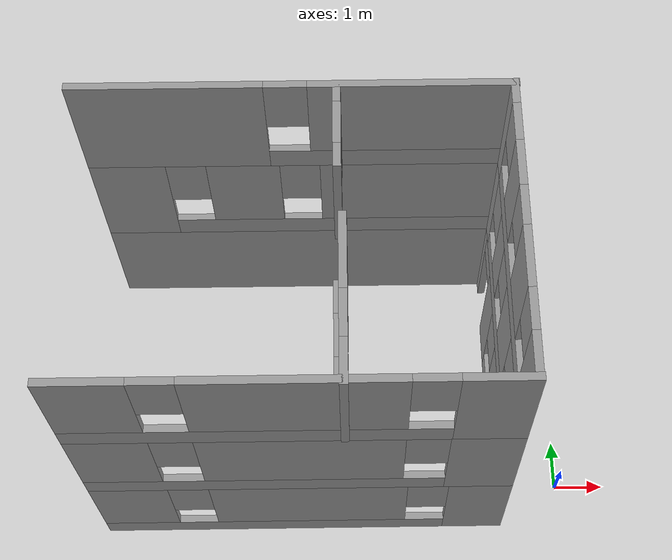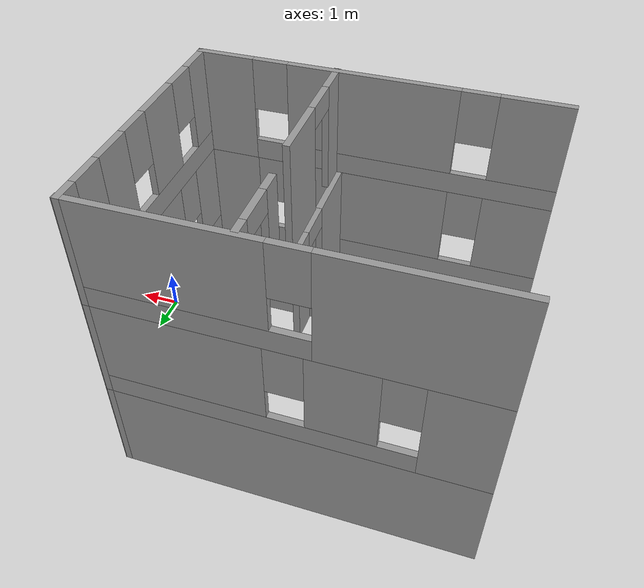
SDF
<sdf version="1.6">
 <model name="simple_building">
  <pose>-5.37242 2.16354 0 0 -0 0</pose>
  <link name="Wall_18">
   <pose>0.008172 2.93646 2.5 0 -0 0</pose>
   <visual name="Wall_18_Visual_0">
    <pose>-3.37982 0 1.25 0 -0 0</pose>
    <geometry><box><size>1.51412 0.15 2.5</size></box></geometry>
    <material>
     <script><uri>file://media/materials/scripts/gazebo.material</uri><name>Gazebo/Grey</name></script>
     <ambient>1 1 1 1</ambient>
    </material>
   </visual>
   <collision name="Wall_18_Collision_0">
    <geometry><box><size>1.51412 0.15 2.5</size></box></geometry>
    <pose>-3.37982 0 1.25 0 -0 0</pose>
   </collision>
   <visual name="Wall_18_Visual_1">
    <pose>0.757062 0 0.25 0 -0 0</pose>
    <geometry><box><size>6.75963 0.15 0.5</size></box></geometry>
    <material>
     <script><uri>file://media/materials/scripts/gazebo.material</uri><name>Gazebo/Grey</name></script>
     <ambient>1 1 1 1</ambient>
    </material>
   </visual>
   <collision name="Wall_18_Collision_1">
    <geometry><box><size>6.75963 0.15 0.5</size></box></geometry>
    <pose>0.757062 0 0.25 0 -0 0</pose>
   </collision>
   <visual name="Wall_18_Visual_2">
    <pose>-1.0897 0 1.5 0 -0 0</pose>
    <geometry><box><size>1.4661 0.15 2</size></box></geometry>
    <material>
     <script><uri>file://media/materials/scripts/gazebo.material</uri><name>Gazebo/Grey</name></script>
     <ambient>1 1 1 1</ambient>
    </material>
   </visual>
   <collision name="Wall_18_Collision_2">
    <geometry><box><size>1.4661 0.15 2</size></box></geometry>
    <pose>-1.0897 0 1.5 0 -0 0</pose>
   </collision>
   <visual name="Wall_18_Visual_3">
    <pose>2.29011 0 1.5 0 -0 0</pose>
    <geometry><box><size>3.69353 0.15 2</size></box></geometry>
    <material>
     <script><uri>file://media/materials/scripts/gazebo.material</uri><name>Gazebo/Grey</name></script>
     <ambient>1 1 1 1</ambient>
    </material>
   </visual>
   <collision name="Wall_18_Collision_3">
    <geometry><box><size>3.69353 0.15 2</size></box></geometry>
    <pose>2.29011 0 1.5 0 -0 0</pose>
   </collision>
   <visual name="Wall_18_Visual_4">
    <pose>-2.22275 0 1.9 0 -0 0</pose>
    <geometry><box><size>0.8 0.15 1.2</size></box></geometry>
    <material>
     <script><uri>file://media/materials/scripts/gazebo.material</uri><name>Gazebo/Grey</name></script>
     <ambient>1 1 1 1</ambient>
    </material>
   </visual>
   <collision name="Wall_18_Collision_4">
    <geometry><box><size>0.8 0.15 1.2</size></box></geometry>
    <pose>-2.22275 0 1.9 0 -0 0</pose>
   </collision>
   <visual name="Wall_18_Visual_5">
    <pose>0.043349 0 1.9 0 -0 0</pose>
    <geometry><box><size>0.8 0.15 1.2</size></box></geometry>
    <material>
     <script><uri>file://media/materials/scripts/gazebo.material</uri><name>Gazebo/Grey</name></script>
     <ambient>1 1 1 1</ambient>
    </material>
   </visual>
   <collision name="Wall_18_Collision_5">
    <geometry><box><size>0.8 0.15 1.2</size></box></geometry>
    <pose>0.043349 0 1.9 0 -0 0</pose>
   </collision>
  </link>
  <link name="Wall_19">
   <pose>4.05484 0.011464 2.5 0 0 -1.5708</pose>
   <visual name="Wall_19_Visual_0">
    <pose>-2.73149 0 1.25 0 -0 0</pose>
    <geometry><box><size>0.537024 0.15 2.5</size></box></geometry>
    <material>
     <script><uri>file://media/materials/scripts/gazebo.material</uri><name>Gazebo/Grey</name></script>
     <ambient>1 1 1 1</ambient>
    </material>
   </visual>
   <collision name="Wall_19_Collision_0">
    <geometry><box><size>0.537024 0.15 2.5</size></box></geometry>
    <pose>-2.73149 0 1.25 0 -0 0</pose>
   </collision>
   <visual name="Wall_19_Visual_1">
    <pose>0.268512 0 0.25 0 -0 0</pose>
    <geometry><box><size>5.46298 0.15 0.5</size></box></geometry>
    <material>
     <script><uri>file://media/materials/scripts/gazebo.material</uri><name>Gazebo/Grey</name></script>
     <ambient>1 1 1 1</ambient>
    </material>
   </visual>
   <collision name="Wall_19_Collision_1">
    <geometry><box><size>5.46298 0.15 0.5</size></box></geometry>
    <pose>0.268512 0 0.25 0 -0 0</pose>
   </collision>
   <visual name="Wall_19_Visual_2">
    <pose>-1.27212 0 1.5 0 -0 0</pose>
    <geometry><box><size>0.78171 0.15 2</size></box></geometry>
    <material>
     <script><uri>file://media/materials/scripts/gazebo.material</uri><name>Gazebo/Grey</name></script>
     <ambient>1 1 1 1</ambient>
    </material>
   </visual>
   <collision name="Wall_19_Collision_2">
    <geometry><box><size>0.78171 0.15 2</size></box></geometry>
    <pose>-1.27212 0 1.5 0 -0 0</pose>
   </collision>
   <visual name="Wall_19_Visual_3">
    <pose>0.469281 0 1.5 0 -0 0</pose>
    <geometry><box><size>1.10109 0.15 2</size></box></geometry>
    <material>
     <script><uri>file://media/materials/scripts/gazebo.material</uri><name>Gazebo/Grey</name></script>
     <ambient>1 1 1 1</ambient>
    </material>
   </visual>
   <collision name="Wall_19_Collision_3">
    <geometry><box><size>1.10109 0.15 2</size></box></geometry>
    <pose>0.469281 0 1.5 0 -0 0</pose>
   </collision>
   <visual name="Wall_19_Visual_4">
    <pose>2.40991 0 1.5 0 -0 0</pose>
    <geometry><box><size>1.18017 0.15 2</size></box></geometry>
    <material>
     <script><uri>file://media/materials/scripts/gazebo.material</uri><name>Gazebo/Grey</name></script>
     <ambient>1 1 1 1</ambient>
    </material>
   </visual>
   <collision name="Wall_19_Collision_4">
    <geometry><box><size>1.18017 0.15 2</size></box></geometry>
    <pose>2.40991 0 1.5 0 -0 0</pose>
   </collision>
   <visual name="Wall_19_Visual_5">
    <pose>-2.06298 0 1.9 0 -0 0</pose>
    <geometry><box><size>0.8 0.15 1.2</size></box></geometry>
    <material>
     <script><uri>file://media/materials/scripts/gazebo.material</uri><name>Gazebo/Grey</name></script>
     <ambient>1 1 1 1</ambient>
    </material>
   </visual>
   <collision name="Wall_19_Collision_5">
    <geometry><box><size>0.8 0.15 1.2</size></box></geometry>
    <pose>-2.06298 0 1.9 0 -0 0</pose>
   </collision>
   <visual name="Wall_19_Visual_6">
    <pose>-0.481266 0 1.9 0 -0 0</pose>
    <geometry><box><size>0.8 0.15 1.2</size></box></geometry>
    <material>
     <script><uri>file://media/materials/scripts/gazebo.material</uri><name>Gazebo/Grey</name></script>
     <ambient>1 1 1 1</ambient>
    </material>
   </visual>
   <collision name="Wall_19_Collision_6">
    <geometry><box><size>0.8 0.15 1.2</size></box></geometry>
    <pose>-0.481266 0 1.9 0 -0 0</pose>
   </collision>
   <visual name="Wall_19_Visual_7">
    <pose>1.41983 0 1.9 0 -0 0</pose>
    <geometry><box><size>0.8 0.15 1.2</size></box></geometry>
    <material>
     <script><uri>file://media/materials/scripts/gazebo.material</uri><name>Gazebo/Grey</name></script>
     <ambient>1 1 1 1</ambient>
    </material>
   </visual>
   <collision name="Wall_19_Collision_7">
    <geometry><box><size>0.8 0.15 1.2</size></box></geometry>
    <pose>1.41983 0 1.9 0 -0 0</pose>
   </collision>
  </link>
  <link name="Wall_2">
   <collision name="Wall_2_Collision">
    <geometry><box><size>8.27376 0.15 2.5</size></box></geometry>
    <pose>0 0 1.25 0 -0 0</pose>
   </collision>
   <visual name="Wall_2_Visual">
    <pose>0 0 1.25 0 -0 0</pose>
    <geometry><box><size>8.27376 0.15 2.5</size></box></geometry>
    <material>
     <script><uri>file://media/materials/scripts/gazebo.material</uri><name>Gazebo/Grey</name></script>
     <ambient>1 1 1 1</ambient>
    </material>
   </visual>
   <pose>0.008172 2.93646 0 0 -0 0</pose>
  </link>
  <link name="Wall_20">
   <pose>0.008172 -2.91354 2.5 0 -0 3.14159</pose>
   <visual name="Wall_20_Visual_0">
    <pose>-3.46119 0 1.25 0 -0 0</pose>
    <geometry><box><size>1.35138 0.15 2.5</size></box></geometry>
    <material>
     <script><uri>file://media/materials/scripts/gazebo.material</uri><name>Gazebo/Grey</name></script>
     <ambient>1 1 1 1</ambient>
    </material>
   </visual>
   <collision name="Wall_20_Collision_0">
    <geometry><box><size>1.35138 0.15 2.5</size></box></geometry>
    <pose>-3.46119 0 1.25 0 -0 0</pose>
   </collision>
   <visual name="Wall_20_Visual_1">
    <pose>0.675691 0 0.25 0 -0 0</pose>
    <geometry><box><size>6.92237 0.15 0.5</size></box></geometry>
    <material>
     <script><uri>file://media/materials/scripts/gazebo.material</uri><name>Gazebo/Grey</name></script>
     <ambient>1 1 1 1</ambient>
    </material>
   </visual>
   <collision name="Wall_20_Collision_1">
    <geometry><box><size>6.92237 0.15 0.5</size></box></geometry>
    <pose>0.675691 0 0.25 0 -0 0</pose>
   </collision>
   <visual name="Wall_20_Visual_2">
    <pose>-0.088975 0 1.5 0 -0 0</pose>
    <geometry><box><size>3.79304 0.15 2</size></box></geometry>
    <material>
     <script><uri>file://media/materials/scripts/gazebo.material</uri><name>Gazebo/Grey</name></script>
     <ambient>1 1 1 1</ambient>
    </material>
   </visual>
   <collision name="Wall_20_Collision_2">
    <geometry><box><size>3.79304 0.15 2</size></box></geometry>
    <pose>-0.088975 0 1.5 0 -0 0</pose>
   </collision>
   <visual name="Wall_20_Visual_3">
    <pose>3.37221 0 1.5 0 -0 0</pose>
    <geometry><box><size>1.52933 0.15 2</size></box></geometry>
    <material>
     <script><uri>file://media/materials/scripts/gazebo.material</uri><name>Gazebo/Grey</name></script>
     <ambient>1 1 1 1</ambient>
    </material>
   </visual>
   <collision name="Wall_20_Collision_3">
    <geometry><box><size>1.52933 0.15 2</size></box></geometry>
    <pose>3.37221 0 1.5 0 -0 0</pose>
   </collision>
   <visual name="Wall_20_Visual_4">
    <pose>-2.3855 0 1.9 0 -0 0</pose>
    <geometry><box><size>0.8 0.15 1.2</size></box></geometry>
    <material>
     <script><uri>file://media/materials/scripts/gazebo.material</uri><name>Gazebo/Grey</name></script>
     <ambient>1 1 1 1</ambient>
    </material>
   </visual>
   <collision name="Wall_20_Collision_4">
    <geometry><box><size>0.8 0.15 1.2</size></box></geometry>
    <pose>-2.3855 0 1.9 0 -0 0</pose>
   </collision>
   <visual name="Wall_20_Visual_5">
    <pose>2.20755 0 1.9 0 -0 0</pose>
    <geometry><box><size>0.8 0.15 1.2</size></box></geometry>
    <material>
     <script><uri>file://media/materials/scripts/gazebo.material</uri><name>Gazebo/Grey</name></script>
     <ambient>1 1 1 1</ambient>
    </material>
   </visual>
   <collision name="Wall_20_Collision_5">
    <geometry><box><size>0.8 0.15 1.2</size></box></geometry>
    <pose>2.20755 0 1.9 0 -0 0</pose>
   </collision>
  </link>
  <link name="Wall_23">
   <pose>0.008172 2.93646 5 0 -0 0</pose>
   <visual name="Wall_23_Visual_0">
    <pose>-2.33041 0 1.25 0 -0 0</pose>
    <geometry><box><size>3.61293 0.15 2.5</size></box></geometry>
    <material>
     <script><uri>file://media/materials/scripts/gazebo.material</uri><name>Gazebo/Grey</name></script>
     <ambient>1 1 1 1</ambient>
    </material>
   </visual>
   <collision name="Wall_23_Collision_0">
    <geometry><box><size>3.61293 0.15 2.5</size></box></geometry>
    <pose>-2.33041 0 1.25 0 -0 0</pose>
   </collision>
   <visual name="Wall_23_Visual_1">
    <pose>1.80647 0 0.25 0 -0 0</pose>
    <geometry><box><size>4.66083 0.15 0.5</size></box></geometry>
    <material>
     <script><uri>file://media/materials/scripts/gazebo.material</uri><name>Gazebo/Grey</name></script>
     <ambient>1 1 1 1</ambient>
    </material>
   </visual>
   <collision name="Wall_23_Collision_1">
    <geometry><box><size>4.66083 0.15 0.5</size></box></geometry>
    <pose>1.80647 0 0.25 0 -0 0</pose>
   </collision>
   <visual name="Wall_23_Visual_2">
    <pose>2.20647 0 1.5 0 -0 0</pose>
    <geometry><box><size>3.86083 0.15 2</size></box></geometry>
    <material>
     <script><uri>file://media/materials/scripts/gazebo.material</uri><name>Gazebo/Grey</name></script>
     <ambient>1 1 1 1</ambient>
    </material>
   </visual>
   <collision name="Wall_23_Collision_2">
    <geometry><box><size>3.86083 0.15 2</size></box></geometry>
    <pose>2.20647 0 1.5 0 -0 0</pose>
   </collision>
   <visual name="Wall_23_Visual_3">
    <pose>-0.123947 0 1.9 0 -0 0</pose>
    <geometry><box><size>0.8 0.15 1.2</size></box></geometry>
    <material>
     <script><uri>file://media/materials/scripts/gazebo.material</uri><name>Gazebo/Grey</name></script>
     <ambient>1 1 1 1</ambient>
    </material>
   </visual>
   <collision name="Wall_23_Collision_3">
    <geometry><box><size>0.8 0.15 1.2</size></box></geometry>
    <pose>-0.123947 0 1.9 0 -0 0</pose>
   </collision>
  </link>
  <link name="Wall_24">
   <pose>4.05484 0.011464 5 0 0 -1.5708</pose>
   <visual name="Wall_24_Visual_0">
    <pose>-2.73149 0 1.25 0 -0 0</pose>
    <geometry><box><size>0.537024 0.15 2.5</size></box></geometry>
    <material>
     <script><uri>file://media/materials/scripts/gazebo.material</uri><name>Gazebo/Grey</name></script>
     <ambient>1 1 1 1</ambient>
    </material>
   </visual>
   <collision name="Wall_24_Collision_0">
    <geometry><box><size>0.537024 0.15 2.5</size></box></geometry>
    <pose>-2.73149 0 1.25 0 -0 0</pose>
   </collision>
   <visual name="Wall_24_Visual_1">
    <pose>0.268512 0 0.25 0 -0 0</pose>
    <geometry><box><size>5.46298 0.15 0.5</size></box></geometry>
    <material>
     <script><uri>file://media/materials/scripts/gazebo.material</uri><name>Gazebo/Grey</name></script>
     <ambient>1 1 1 1</ambient>
    </material>
   </visual>
   <collision name="Wall_24_Collision_1">
    <geometry><box><size>5.46298 0.15 0.5</size></box></geometry>
    <pose>0.268512 0 0.25 0 -0 0</pose>
   </collision>
   <visual name="Wall_24_Visual_2">
    <pose>-1.18847 0 1.5 0 -0 0</pose>
    <geometry><box><size>0.949006 0.15 2</size></box></geometry>
    <material>
     <script><uri>file://media/materials/scripts/gazebo.material</uri><name>Gazebo/Grey</name></script>
     <ambient>1 1 1 1</ambient>
    </material>
   </visual>
   <collision name="Wall_24_Collision_2">
    <geometry><box><size>0.949006 0.15 2</size></box></geometry>
    <pose>-1.18847 0 1.5 0 -0 0</pose>
   </collision>
   <visual name="Wall_24_Visual_3">
    <pose>0.689808 0 1.5 0 -0 0</pose>
    <geometry><box><size>1.20755 0.15 2</size></box></geometry>
    <material>
     <script><uri>file://media/materials/scripts/gazebo.material</uri><name>Gazebo/Grey</name></script>
     <ambient>1 1 1 1</ambient>
    </material>
   </visual>
   <collision name="Wall_24_Collision_3">
    <geometry><box><size>1.20755 0.15 2</size></box></geometry>
    <pose>0.689808 0 1.5 0 -0 0</pose>
   </collision>
   <visual name="Wall_24_Visual_4">
    <pose>2.54679 0 1.5 0 -0 0</pose>
    <geometry><box><size>0.906414 0.15 2</size></box></geometry>
    <material>
     <script><uri>file://media/materials/scripts/gazebo.material</uri><name>Gazebo/Grey</name></script>
     <ambient>1 1 1 1</ambient>
    </material>
   </visual>
   <collision name="Wall_24_Collision_4">
    <geometry><box><size>0.906414 0.15 2</size></box></geometry>
    <pose>2.54679 0 1.5 0 -0 0</pose>
   </collision>
   <visual name="Wall_24_Visual_5">
    <pose>-2.06298 0 1.9 0 -0 0</pose>
    <geometry><box><size>0.8 0.15 1.2</size></box></geometry>
    <material>
     <script><uri>file://media/materials/scripts/gazebo.material</uri><name>Gazebo/Grey</name></script>
     <ambient>1 1 1 1</ambient>
    </material>
   </visual>
   <collision name="Wall_24_Collision_5">
    <geometry><box><size>0.8 0.15 1.2</size></box></geometry>
    <pose>-2.06298 0 1.9 0 -0 0</pose>
   </collision>
   <visual name="Wall_24_Visual_6">
    <pose>-0.313969 0 1.9 0 -0 0</pose>
    <geometry><box><size>0.8 0.15 1.2</size></box></geometry>
    <material>
     <script><uri>file://media/materials/scripts/gazebo.material</uri><name>Gazebo/Grey</name></script>
     <ambient>1 1 1 1</ambient>
    </material>
   </visual>
   <collision name="Wall_24_Collision_6">
    <geometry><box><size>0.8 0.15 1.2</size></box></geometry>
    <pose>-0.313969 0 1.9 0 -0 0</pose>
   </collision>
   <visual name="Wall_24_Visual_7">
    <pose>1.69359 0 1.9 0 -0 0</pose>
    <geometry><box><size>0.8 0.15 1.2</size></box></geometry>
    <material>
     <script><uri>file://media/materials/scripts/gazebo.material</uri><name>Gazebo/Grey</name></script>
     <ambient>1 1 1 1</ambient>
    </material>
   </visual>
   <collision name="Wall_24_Collision_7">
    <geometry><box><size>0.8 0.15 1.2</size></box></geometry>
    <pose>1.69359 0 1.9 0 -0 0</pose>
   </collision>
  </link>
  <link name="Wall_25">
   <pose>0.008172 -2.91354 5 0 -0 3.14159</pose>
   <visual name="Wall_25_Visual_0">
    <pose>-3.46879 0 1.25 0 -0 0</pose>
    <geometry><box><size>1.33617 0.15 2.5</size></box></geometry>
    <material>
     <script><uri>file://media/materials/scripts/gazebo.material</uri><name>Gazebo/Grey</name></script>
     <ambient>1 1 1 1</ambient>
    </material>
   </visual>
   <collision name="Wall_25_Collision_0">
    <geometry><box><size>1.33617 0.15 2.5</size></box></geometry>
    <pose>-3.46879 0 1.25 0 -0 0</pose>
   </collision>
   <visual name="Wall_25_Visual_1">
    <pose>0.668087 0 0.25 0 -0 0</pose>
    <geometry><box><size>6.93758 0.15 0.5</size></box></geometry>
    <material>
     <script><uri>file://media/materials/scripts/gazebo.material</uri><name>Gazebo/Grey</name></script>
     <ambient>1 1 1 1</ambient>
    </material>
   </visual>
   <collision name="Wall_25_Collision_1">
    <geometry><box><size>6.93758 0.15 0.5</size></box></geometry>
    <pose>0.668087 0 0.25 0 -0 0</pose>
   </collision>
   <visual name="Wall_25_Visual_2">
    <pose>-0.096579 0 1.5 0 -0 0</pose>
    <geometry><box><size>3.80825 0.15 2</size></box></geometry>
    <material>
     <script><uri>file://media/materials/scripts/gazebo.material</uri><name>Gazebo/Grey</name></script>
     <ambient>1 1 1 1</ambient>
    </material>
   </visual>
   <collision name="Wall_25_Collision_2">
    <geometry><box><size>3.80825 0.15 2</size></box></geometry>
    <pose>-0.096579 0 1.5 0 -0 0</pose>
   </collision>
   <visual name="Wall_25_Visual_3">
    <pose>3.37221 0 1.5 0 -0 0</pose>
    <geometry><box><size>1.52933 0.15 2</size></box></geometry>
    <material>
     <script><uri>file://media/materials/scripts/gazebo.material</uri><name>Gazebo/Grey</name></script>
     <ambient>1 1 1 1</ambient>
    </material>
   </visual>
   <collision name="Wall_25_Collision_3">
    <geometry><box><size>1.52933 0.15 2</size></box></geometry>
    <pose>3.37221 0 1.5 0 -0 0</pose>
   </collision>
   <visual name="Wall_25_Visual_4">
    <pose>-2.4007 0 1.9 0 -0 0</pose>
    <geometry><box><size>0.8 0.15 1.2</size></box></geometry>
    <material>
     <script><uri>file://media/materials/scripts/gazebo.material</uri><name>Gazebo/Grey</name></script>
     <ambient>1 1 1 1</ambient>
    </material>
   </visual>
   <collision name="Wall_25_Collision_4">
    <geometry><box><size>0.8 0.15 1.2</size></box></geometry>
    <pose>-2.4007 0 1.9 0 -0 0</pose>
   </collision>
   <visual name="Wall_25_Visual_5">
    <pose>2.20755 0 1.9 0 -0 0</pose>
    <geometry><box><size>0.8 0.15 1.2</size></box></geometry>
    <material>
     <script><uri>file://media/materials/scripts/gazebo.material</uri><name>Gazebo/Grey</name></script>
     <ambient>1 1 1 1</ambient>
    </material>
   </visual>
   <collision name="Wall_25_Collision_5">
    <geometry><box><size>0.8 0.15 1.2</size></box></geometry>
    <pose>2.20755 0 1.9 0 -0 0</pose>
   </collision>
  </link>
  <link name="Wall_27">
   <pose>0.819284 2.03127 5 0 -0 1.5708</pose>
   <visual name="Wall_27_Visual_0">
    <pose>-0.630644 0 1.25 0 -0 0</pose>
    <geometry><box><size>0.488713 0.15 2.5</size></box></geometry>
    <material>
     <script><uri>file://media/materials/scripts/gazebo.material</uri><name>Gazebo/Grey</name></script>
     <ambient>1 1 1 1</ambient>
    </material>
   </visual>
   <collision name="Wall_27_Collision_0">
    <geometry><box><size>0.488713 0.15 2.5</size></box></geometry>
    <pose>-0.630644 0 1.25 0 -0 0</pose>
   </collision>
   <visual name="Wall_27_Visual_1">
    <pose>0.694356 0 1.25 0 -0 0</pose>
    <geometry><box><size>0.361287 0.15 2.5</size></box></geometry>
    <material>
     <script><uri>file://media/materials/scripts/gazebo.material</uri><name>Gazebo/Grey</name></script>
     <ambient>1 1 1 1</ambient>
    </material>
   </visual>
   <collision name="Wall_27_Collision_1">
    <geometry><box><size>0.361287 0.15 2.5</size></box></geometry>
    <pose>0.694356 0 1.25 0 -0 0</pose>
   </collision>
   <visual name="Wall_27_Visual_2">
    <pose>0.063713 0 2.25 0 -0 0</pose>
    <geometry><box><size>0.9 0.15 0.5</size></box></geometry>
    <material>
     <script><uri>file://media/materials/scripts/gazebo.material</uri><name>Gazebo/Grey</name></script>
     <ambient>1 1 1 1</ambient>
    </material>
   </visual>
   <collision name="Wall_27_Collision_2">
    <geometry><box><size>0.9 0.15 0.5</size></box></geometry>
    <pose>0.063713 0 2.25 0 -0 0</pose>
   </collision>
  </link>
  <link name="Wall_3">
   <pose>4.05484 0.011464 0 0 0 -1.5708</pose>
   <visual name="Wall_3_Visual_0">
    <pose>-2.80638 0 1.25 0 -0 0</pose>
    <geometry><box><size>0.387247 0.15 2.5</size></box></geometry>
    <material>
     <script><uri>file://media/materials/scripts/gazebo.material</uri><name>Gazebo/Grey</name></script>
     <ambient>1 1 1 1</ambient>
    </material>
   </visual>
   <collision name="Wall_3_Collision_0">
    <geometry><box><size>0.387247 0.15 2.5</size></box></geometry>
    <pose>-2.80638 0 1.25 0 -0 0</pose>
   </collision>
   <visual name="Wall_3_Visual_1">
    <pose>-1.25899 0 1.25 0 -0 0</pose>
    <geometry><box><size>0.907531 0.15 2.5</size></box></geometry>
    <material>
     <script><uri>file://media/materials/scripts/gazebo.material</uri><name>Gazebo/Grey</name></script>
     <ambient>1 1 1 1</ambient>
    </material>
   </visual>
   <collision name="Wall_3_Collision_1">
    <geometry><box><size>0.907531 0.15 2.5</size></box></geometry>
    <pose>-1.25899 0 1.25 0 -0 0</pose>
   </collision>
   <visual name="Wall_3_Visual_2">
    <pose>1.09739 0 0.25 0 -0 0</pose>
    <geometry><box><size>3.80522 0.15 0.5</size></box></geometry>
    <material>
     <script><uri>file://media/materials/scripts/gazebo.material</uri><name>Gazebo/Grey</name></script>
     <ambient>1 1 1 1</ambient>
    </material>
   </visual>
   <collision name="Wall_3_Collision_2">
    <geometry><box><size>3.80522 0.15 0.5</size></box></geometry>
    <pose>1.09739 0 0.25 0 -0 0</pose>
   </collision>
   <visual name="Wall_3_Visual_3">
    <pose>0.446468 0 1.5 0 -0 0</pose>
    <geometry><box><size>0.90338 0.15 2</size></box></geometry>
    <material>
     <script><uri>file://media/materials/scripts/gazebo.material</uri><name>Gazebo/Grey</name></script>
     <ambient>1 1 1 1</ambient>
    </material>
   </visual>
   <collision name="Wall_3_Collision_3">
    <geometry><box><size>0.90338 0.15 2</size></box></geometry>
    <pose>0.446468 0 1.5 0 -0 0</pose>
   </collision>
   <visual name="Wall_3_Visual_4">
    <pose>2.34908 0 1.5 0 -0 0</pose>
    <geometry><box><size>1.30184 0.15 2</size></box></geometry>
    <material>
     <script><uri>file://media/materials/scripts/gazebo.material</uri><name>Gazebo/Grey</name></script>
     <ambient>1 1 1 1</ambient>
    </material>
   </visual>
   <collision name="Wall_3_Collision_4">
    <geometry><box><size>1.30184 0.15 2</size></box></geometry>
    <pose>2.34908 0 1.5 0 -0 0</pose>
   </collision>
   <visual name="Wall_3_Visual_5">
    <pose>-0.405222 0 1.9 0 -0 0</pose>
    <geometry><box><size>0.8 0.15 1.2</size></box></geometry>
    <material>
     <script><uri>file://media/materials/scripts/gazebo.material</uri><name>Gazebo/Grey</name></script>
     <ambient>1 1 1 1</ambient>
    </material>
   </visual>
   <collision name="Wall_3_Collision_5">
    <geometry><box><size>0.8 0.15 1.2</size></box></geometry>
    <pose>-0.405222 0 1.9 0 -0 0</pose>
   </collision>
   <visual name="Wall_3_Visual_6">
    <pose>1.29816 0 1.9 0 -0 0</pose>
    <geometry><box><size>0.8 0.15 1.2</size></box></geometry>
    <material>
     <script><uri>file://media/materials/scripts/gazebo.material</uri><name>Gazebo/Grey</name></script>
     <ambient>1 1 1 1</ambient>
    </material>
   </visual>
   <collision name="Wall_3_Collision_6">
    <geometry><box><size>0.8 0.15 1.2</size></box></geometry>
    <pose>1.29816 0 1.9 0 -0 0</pose>
   </collision>
   <visual name="Wall_3_Visual_7">
    <pose>-2.16275 0 2.25 0 -0 0</pose>
    <geometry><box><size>0.9 0.15 0.5</size></box></geometry>
    <material>
     <script><uri>file://media/materials/scripts/gazebo.material</uri><name>Gazebo/Grey</name></script>
     <ambient>1 1 1 1</ambient>
    </material>
   </visual>
   <collision name="Wall_3_Collision_7">
    <geometry><box><size>0.9 0.15 0.5</size></box></geometry>
    <pose>-2.16275 0 2.25 0 -0 0</pose>
   </collision>
  </link>
  <link name="Wall_32">
   <pose>0.906209 -1.38646 5 0 -0 1.5708</pose>
   <visual name="Wall_32_Visual_0">
    <pose>-1.20054 0 1.25 0 -0 0</pose>
    <geometry><box><size>0.848925 0.15 2.5</size></box></geometry>
    <material>
     <script><uri>file://media/materials/scripts/gazebo.material</uri><name>Gazebo/Grey</name></script>
     <ambient>1 1 1 1</ambient>
    </material>
   </visual>
   <collision name="Wall_32_Collision_0">
    <geometry><box><size>0.848925 0.15 2.5</size></box></geometry>
    <pose>-1.20054 0 1.25 0 -0 0</pose>
   </collision>
   <visual name="Wall_32_Visual_1">
    <pose>0.874463 0 1.25 0 -0 0</pose>
    <geometry><box><size>1.50107 0.15 2.5</size></box></geometry>
    <material>
     <script><uri>file://media/materials/scripts/gazebo.material</uri><name>Gazebo/Grey</name></script>
     <ambient>1 1 1 1</ambient>
    </material>
   </visual>
   <collision name="Wall_32_Collision_1">
    <geometry><box><size>1.50107 0.15 2.5</size></box></geometry>
    <pose>0.874463 0 1.25 0 -0 0</pose>
   </collision>
   <visual name="Wall_32_Visual_2">
    <pose>-0.326075 0 2.25 0 -0 0</pose>
    <geometry><box><size>0.9 0.15 0.5</size></box></geometry>
    <material>
     <script><uri>file://media/materials/scripts/gazebo.material</uri><name>Gazebo/Grey</name></script>
     <ambient>1 1 1 1</ambient>
    </material>
   </visual>
   <collision name="Wall_32_Collision_2">
    <geometry><box><size>0.9 0.15 0.5</size></box></geometry>
    <pose>-0.326075 0 2.25 0 -0 0</pose>
   </collision>
  </link>
  <link name="Wall_36">
   <pose>0.779949 -1.36145 2.5 0 0 -1.5708</pose>
   <visual name="Wall_36_Visual_0">
    <pose>-1.27259 0 1.25 0 -0 0</pose>
    <geometry><box><size>0.704821 0.15 2.5</size></box></geometry>
    <material>
     <script><uri>file://media/materials/scripts/gazebo.material</uri><name>Gazebo/Grey</name></script>
     <ambient>1 1 1 1</ambient>
    </material>
   </visual>
   <collision name="Wall_36_Collision_0">
    <geometry><box><size>0.704821 0.15 2.5</size></box></geometry>
    <pose>-1.27259 0 1.25 0 -0 0</pose>
   </collision>
   <visual name="Wall_36_Visual_1">
    <pose>0.802411 0 1.25 0 -0 0</pose>
    <geometry><box><size>1.64518 0.15 2.5</size></box></geometry>
    <material>
     <script><uri>file://media/materials/scripts/gazebo.material</uri><name>Gazebo/Grey</name></script>
     <ambient>1 1 1 1</ambient>
    </material>
   </visual>
   <collision name="Wall_36_Collision_1">
    <geometry><box><size>1.64518 0.15 2.5</size></box></geometry>
    <pose>0.802411 0 1.25 0 -0 0</pose>
   </collision>
   <visual name="Wall_36_Visual_2">
    <pose>-0.470179 0 2.25 0 -0 0</pose>
    <geometry><box><size>0.9 0.15 0.5</size></box></geometry>
    <material>
     <script><uri>file://media/materials/scripts/gazebo.material</uri><name>Gazebo/Grey</name></script>
     <ambient>1 1 1 1</ambient>
    </material>
   </visual>
   <collision name="Wall_36_Collision_2">
    <geometry><box><size>0.9 0.15 0.5</size></box></geometry>
    <pose>-0.470179 0 2.25 0 -0 0</pose>
   </collision>
  </link>
  <link name="Wall_4">
   <pose>0.008172 -2.91354 0 0 -0 3.14159</pose>
   <visual name="Wall_4_Visual_0">
    <pose>-3.51442 0 1.25 0 -0 0</pose>
    <geometry><box><size>1.24492 0.15 2.5</size></box></geometry>
    <material>
     <script><uri>file://media/materials/scripts/gazebo.material</uri><name>Gazebo/Grey</name></script>
     <ambient>1 1 1 1</ambient>
    </material>
   </visual>
   <collision name="Wall_4_Collision_0">
    <geometry><box><size>1.24492 0.15 2.5</size></box></geometry>
    <pose>-3.51442 0 1.25 0 -0 0</pose>
   </collision>
   <visual name="Wall_4_Visual_1">
    <pose>0.622461 0 0.25 0 -0 0</pose>
    <geometry><box><size>7.02884 0.15 0.5</size></box></geometry>
    <material>
     <script><uri>file://media/materials/scripts/gazebo.material</uri><name>Gazebo/Grey</name></script>
     <ambient>1 1 1 1</ambient>
    </material>
   </visual>
   <collision name="Wall_4_Collision_1">
    <geometry><box><size>7.02884 0.15 0.5</size></box></geometry>
    <pose>0.622461 0 0.25 0 -0 0</pose>
   </collision>
   <visual name="Wall_4_Visual_2">
    <pose>-0.14981 0 1.5 0 -0 0</pose>
    <geometry><box><size>3.88429 0.15 2</size></box></geometry>
    <material>
     <script><uri>file://media/materials/scripts/gazebo.material</uri><name>Gazebo/Grey</name></script>
     <ambient>1 1 1 1</ambient>
    </material>
   </visual>
   <collision name="Wall_4_Collision_2">
    <geometry><box><size>3.88429 0.15 2</size></box></geometry>
    <pose>-0.14981 0 1.5 0 -0 0</pose>
   </collision>
   <visual name="Wall_4_Visual_3">
    <pose>3.36461 0 1.5 0 -0 0</pose>
    <geometry><box><size>1.54454 0.15 2</size></box></geometry>
    <material>
     <script><uri>file://media/materials/scripts/gazebo.material</uri><name>Gazebo/Grey</name></script>
     <ambient>1 1 1 1</ambient>
    </material>
   </visual>
   <collision name="Wall_4_Collision_3">
    <geometry><box><size>1.54454 0.15 2</size></box></geometry>
    <pose>3.36461 0 1.5 0 -0 0</pose>
   </collision>
   <visual name="Wall_4_Visual_4">
    <pose>-2.49196 0 1.9 0 -0 0</pose>
    <geometry><box><size>0.8 0.15 1.2</size></box></geometry>
    <material>
     <script><uri>file://media/materials/scripts/gazebo.material</uri><name>Gazebo/Grey</name></script>
     <ambient>1 1 1 1</ambient>
    </material>
   </visual>
   <collision name="Wall_4_Collision_4">
    <geometry><box><size>0.8 0.15 1.2</size></box></geometry>
    <pose>-2.49196 0 1.9 0 -0 0</pose>
   </collision>
   <visual name="Wall_4_Visual_5">
    <pose>2.19234 0 1.9 0 -0 0</pose>
    <geometry><box><size>0.8 0.15 1.2</size></box></geometry>
    <material>
     <script><uri>file://media/materials/scripts/gazebo.material</uri><name>Gazebo/Grey</name></script>
     <ambient>1 1 1 1</ambient>
    </material>
   </visual>
   <collision name="Wall_4_Collision_5">
    <geometry><box><size>0.8 0.15 1.2</size></box></geometry>
    <pose>2.19234 0 1.9 0 -0 0</pose>
   </collision>
  </link>
  <static>1</static>
 </model>
</sdf>
